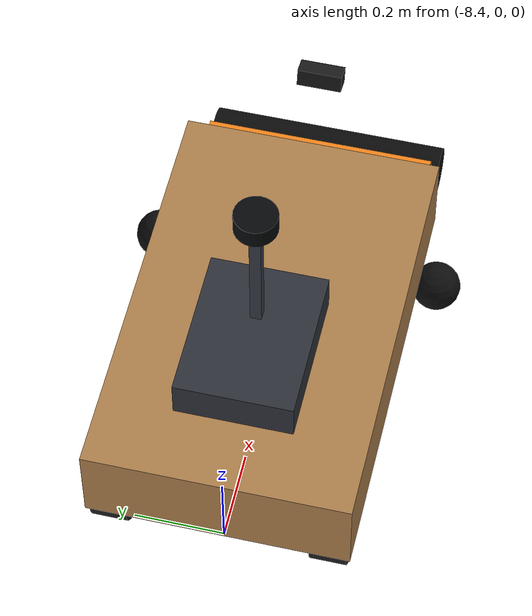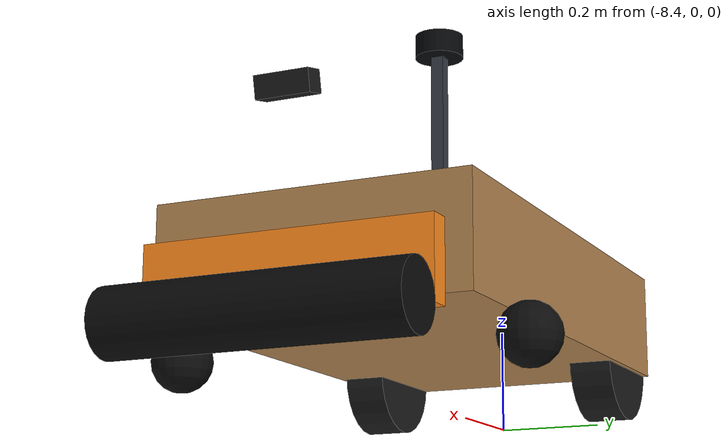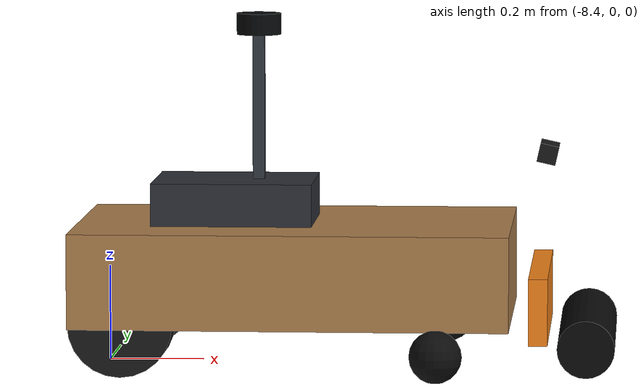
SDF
<?xml version="1.0"?>
<sdf version="1.9">
<model name="tennis_robot">
  <pose>-8 0 0 0 0 0</pose>
  <self_collide>false</self_collide>

  <!-- ═══════════════════════════════════════════════════════ BASE LINK -->
  <link name="base_link">
    <pose>0 0 0.20 0 0 0</pose>
    <inertial>
      <mass>7.2</mass>
      <inertia>
        <ixx>0.22</ixx><ixy>0</ixy><ixz>0</ixz>
        <iyy>0.38</iyy><iyz>0</iyz>
        <izz>0.42</izz>
      </inertia>
    </inertial>
    <collision name="chassis_col">
      <geometry><box><size>0.92 0.58 0.20</size></box></geometry>
    </collision>
    <!-- Plywood chassis — warm birch tone -->
    <visual name="chassis_vis">
      <geometry><box><size>0.92 0.58 0.20</size></box></geometry>
      <material>
        <ambient>0.62 0.44 0.26 1</ambient>
        <diffuse>0.68 0.50 0.30 1</diffuse>
        <specular>0.08 0.06 0.04 1</specular>
      </material>
    </visual>
    <!-- Electronics box — matte anthracite -->
    <visual name="elec_vis">
      <pose>-0.13 0 0.13 0 0 0</pose>
      <geometry><box><size>0.34 0.26 0.12</size></box></geometry>
      <material>
        <ambient>0.14 0.15 0.18 1</ambient>
        <diffuse>0.18 0.19 0.22 1</diffuse>
        <specular>0.15 0.15 0.16 1</specular>
      </material>
    </visual>
    <!-- Orange intake funnel -->
    <visual name="funnel_vis">
      <pose>0.52 0 -0.06 0 0 0</pose>
      <geometry><box><size>0.04 0.52 0.14</size></box></geometry>
      <material>
        <ambient>0.92 0.46 0.08 1</ambient>
        <diffuse>0.96 0.52 0.10 1</diffuse>
        <specular>0.10 0.06 0.02 1</specular>
      </material>
    </visual>
  </link>

  <!-- ═══════════════════════════════════════════════════════ LEFT WHEEL (y = +0.24) -->
  <!-- Cylinder r=0.11m h=0.08m mass=0.25kg, link rotated 90° around X so local Z = spin axis.
       Izz (spin) = 0.5*m*r² = 0.001513; Ixx=Iyy (transverse) = (1/12)*m*(3r²+h²) = 0.000889 -->
  <link name="left_wheel_link">
    <pose>-0.35 0.24 0.11 1.5708 0 0</pose>
    <inertial>
      <mass>0.25</mass>
      <inertia>
        <ixx>0.000889</ixx><ixy>0</ixy><ixz>0</ixz>
        <iyy>0.000889</iyy><iyz>0</iyz>
        <izz>0.001513</izz>
      </inertia>
    </inertial>
    <collision name="col">
      <geometry><cylinder><radius>0.11</radius><length>0.08</length></cylinder></geometry>
      <surface><friction><ode><mu>1.0</mu><mu2>0.5</mu2><fdir1>1 0 0</fdir1></ode></friction></surface>
    </collision>
    <visual name="vis">
      <geometry><cylinder><radius>0.11</radius><length>0.08</length></cylinder></geometry>
      <material>
        <ambient>0.08 0.08 0.08 1</ambient>
        <diffuse>0.10 0.10 0.10 1</diffuse>
        <specular>0.20 0.20 0.20 1</specular>
      </material>
    </visual>
  </link>

  <joint name="left_wheel_joint" type="revolute">
    <parent>base_link</parent>
    <child>left_wheel_link</child>
    <axis>
      <xyz expressed_in="__model__">0 1 0</xyz>
      <limit><lower>-1e16</lower><upper>1e16</upper></limit>
      <dynamics><damping>0.001</damping></dynamics>
    </axis>
  </joint>

  <!-- ═══════════════════════════════════════════════════════ RIGHT WHEEL (y = −0.24) -->
  <link name="right_wheel_link">
    <pose>-0.35 -0.24 0.11 1.5708 0 0</pose>
    <inertial>
      <mass>0.25</mass>
      <inertia>
        <ixx>0.000889</ixx><ixy>0</ixy><ixz>0</ixz>
        <iyy>0.000889</iyy><iyz>0</iyz>
        <izz>0.001513</izz>
      </inertia>
    </inertial>
    <collision name="col">
      <geometry><cylinder><radius>0.11</radius><length>0.08</length></cylinder></geometry>
      <surface><friction><ode><mu>1.0</mu><mu2>0.5</mu2><fdir1>1 0 0</fdir1></ode></friction></surface>
    </collision>
    <visual name="vis">
      <geometry><cylinder><radius>0.11</radius><length>0.08</length></cylinder></geometry>
      <material>
        <ambient>0.08 0.08 0.08 1</ambient>
        <diffuse>0.10 0.10 0.10 1</diffuse>
        <specular>0.20 0.20 0.20 1</specular>
      </material>
    </visual>
  </link>

  <joint name="right_wheel_joint" type="revolute">
    <parent>base_link</parent>
    <child>right_wheel_link</child>
    <axis>
      <xyz expressed_in="__model__">0 1 0</xyz>
      <limit><lower>-1e16</lower><upper>1e16</upper></limit>
      <dynamics><damping>0.001</damping></dynamics>
    </axis>
  </joint>

  <!-- ═══════════════════════════════════════════════════════ INTAKE ROLLER -->
  <link name="lift_wheel_link">
    <pose>0.62 0 0.065 1.5708 0 0</pose>
    <inertial>
      <mass>0.20</mass>
      <inertia>
        <ixx>0.001</ixx><ixy>0</ixy><ixz>0</ixz>
        <iyy>0.001</iyy><iyz>0</iyz>
        <izz>0.001</izz>
      </inertia>
    </inertial>
    <collision name="col">
      <geometry><cylinder><radius>0.06</radius><length>0.54</length></cylinder></geometry>
      <surface><friction><ode><mu>1.5</mu><mu2>1.5</mu2></ode></friction></surface>
    </collision>
    <visual name="vis">
      <geometry><cylinder><radius>0.06</radius><length>0.54</length></cylinder></geometry>
      <material><ambient>0.04 0.04 0.04 1</ambient><diffuse>0.04 0.04 0.04 1</diffuse></material>
    </visual>
  </link>

  <joint name="lift_wheel_joint" type="revolute">
    <parent>base_link</parent>
    <child>lift_wheel_link</child>
    <axis>
      <xyz expressed_in="__model__">0 1 0</xyz>
      <limit><lower>-1e16</lower><upper>1e16</upper></limit>
    </axis>
  </joint>

  <!-- ═══════════════════════════════════════════════════════ FRONT CASTERS (passive) -->
  <link name="front_left_caster_link">
    <pose>0.31 -0.325 0.055 0 0 0</pose>
    <inertial><mass>0.08</mass><inertia><ixx>1e-4</ixx><iyy>1e-4</iyy><izz>1e-4</izz></inertia></inertial>
    <collision name="col">
      <geometry><sphere><radius>0.055</radius></sphere></geometry>
      <surface><friction><ode><mu>0.01</mu><mu2>0.01</mu2></ode></friction></surface>
    </collision>
    <visual name="vis">
      <geometry><sphere><radius>0.055</radius></sphere></geometry>
      <material><ambient>0.05 0.05 0.05 1</ambient></material>
    </visual>
  </link>
  <joint name="front_left_caster_joint" type="ball">
    <parent>base_link</parent><child>front_left_caster_link</child>
  </joint>

  <link name="front_right_caster_link">
    <pose>0.31 0.325 0.055 0 0 0</pose>
    <inertial><mass>0.08</mass><inertia><ixx>1e-4</ixx><iyy>1e-4</iyy><izz>1e-4</izz></inertia></inertial>
    <collision name="col">
      <geometry><sphere><radius>0.055</radius></sphere></geometry>
      <surface><friction><ode><mu>0.01</mu><mu2>0.01</mu2></ode></friction></surface>
    </collision>
    <visual name="vis">
      <geometry><sphere><radius>0.055</radius></sphere></geometry>
      <material><ambient>0.05 0.05 0.05 1</ambient></material>
    </visual>
  </link>
  <joint name="front_right_caster_joint" type="ball">
    <parent>base_link</parent><child>front_right_caster_link</child>
  </joint>

  <!-- ═══════════════════════════════════════════════════════ LIDAR MAST -->
  <link name="lidar_link">
    <pose>-0.08 0 0.72 0 0 0</pose>
    <inertial><mass>0.05</mass><inertia><ixx>1e-4</ixx><iyy>1e-4</iyy><izz>1e-4</izz></inertia></inertial>
    <visual name="mast_vis">
      <pose>0 0 -0.26 0 0 0</pose>
      <geometry><box><size>0.025 0.025 0.49</size></box></geometry>
      <material><ambient>0.20 0.22 0.26 1</ambient></material>
    </visual>
    <visual name="head_vis">
      <geometry><cylinder><radius>0.047</radius><length>0.045</length></cylinder></geometry>
      <material><ambient>0.025 0.03 0.035 1</ambient></material>
    </visual>

    <sensor name="front_lidar" type="gpu_lidar">
      <pose>0 0 0 0 0 0</pose>
      <update_rate>31.25</update_rate>
      <always_on>true</always_on>
      <visualize>false</visualize>
      <topic>/gz/lidar</topic>
      <lidar>
        <scan>
          <horizontal>
            <samples>500</samples>
            <resolution>1</resolution>
            <min_angle>-3.14159265358979</min_angle>
            <max_angle>3.14159265358979</max_angle>
          </horizontal>
        </scan>
        <range>
          <min>0.05</min>
          <max>12.0</max>
          <resolution>0.01</resolution>
        </range>
        <noise><type>gaussian</type><mean>0</mean><stddev>0.005</stddev></noise>
      </lidar>
    </sensor>
  </link>
  <joint name="lidar_joint" type="fixed">
    <parent>base_link</parent><child>lidar_link</child>
  </joint>

  <!-- ═══════════════════════════════════════════════════════ CAMERA -->
  <link name="camera_link">
    <!-- x=0.535, z=0.45 from ground (0.20+0.25), pitch 0.22 rad down -->
    <pose>0.535 0 0.45 0 0.22 0</pose>
    <inertial><mass>0.03</mass><inertia><ixx>1e-5</ixx><iyy>1e-5</iyy><izz>1e-5</izz></inertia></inertial>
    <visual name="cam_vis">
      <geometry><box><size>0.04 0.10 0.04</size></box></geometry>
      <material><ambient>0.1 0.1 0.1 1</ambient></material>
    </visual>

    <sensor name="front_camera" type="camera">
      <pose>0 0 0 0 0 0</pose>
      <update_rate>31.25</update_rate>
      <always_on>true</always_on>
      <visualize>false</visualize>
      <topic>/gz/camera</topic>
      <camera>
        <horizontal_fov>1.204</horizontal_fov>
        <image><width>1920</width><height>1080</height><format>R8G8B8</format></image>
        <clip><near>0.08</near><far>18</far></clip>
        <noise><type>gaussian</type><mean>0</mean><stddev>0.007</stddev></noise>
      </camera>
    </sensor>

    <sensor name="front_depth" type="depth_camera">
      <pose>0 0 0 0 0 0</pose>
      <update_rate>31.25</update_rate>
      <always_on>true</always_on>
      <topic>/gz/depth</topic>
      <camera>
        <horizontal_fov>1.274</horizontal_fov>
        <image><width>640</width><height>480</height><format>R_FLOAT32</format></image>
        <clip><near>0.20</near><far>12</far></clip>
      </camera>
    </sensor>
  </link>
  <joint name="camera_joint" type="fixed">
    <parent>base_link</parent><child>camera_link</child>
  </joint>

  <!-- ═══════════════════════════════════════════════════════ IR SENSORS (beam-break pair) -->
  <!-- IR left points in +Y direction (toward robot center from y=−0.105) -->
  <link name="ir_left_link">
    <pose>0.54 -0.105 0.06 0 0 -1.5708</pose>
    <inertial><mass>0.005</mass><inertia><ixx>1e-6</ixx><iyy>1e-6</iyy><izz>1e-6</izz></inertia></inertial>
    <sensor name="ir_left" type="gpu_lidar">
      <update_rate>31.25</update_rate>
      <always_on>true</always_on>
      <topic>/gz/ir_left</topic>
      <lidar>
        <scan>
          <horizontal><samples>1</samples><resolution>1</resolution>
            <min_angle>0</min_angle><max_angle>0</max_angle>
          </horizontal>
        </scan>
        <range><min>0.01</min><max>0.25</max><resolution>0.001</resolution></range>
      </lidar>
    </sensor>
  </link>
  <joint name="ir_left_joint" type="fixed">
    <parent>base_link</parent><child>ir_left_link</child>
  </joint>

  <!-- IR right points in −Y direction (toward robot center from y=+0.105) -->
  <link name="ir_right_link">
    <pose>0.54 0.105 0.06 0 0 1.5708</pose>
    <inertial><mass>0.005</mass><inertia><ixx>1e-6</ixx><iyy>1e-6</iyy><izz>1e-6</izz></inertia></inertial>
    <sensor name="ir_right" type="gpu_lidar">
      <update_rate>31.25</update_rate>
      <always_on>true</always_on>
      <topic>/gz/ir_right</topic>
      <lidar>
        <scan>
          <horizontal><samples>1</samples><resolution>1</resolution>
            <min_angle>0</min_angle><max_angle>0</max_angle>
          </horizontal>
        </scan>
        <range><min>0.01</min><max>0.25</max><resolution>0.001</resolution></range>
      </lidar>
    </sensor>
  </link>
  <joint name="ir_right_joint" type="fixed">
    <parent>base_link</parent><child>ir_right_link</child>
  </joint>

  <!-- ═══════════════════════════════════════════════════════ DIFF DRIVE -->
  <plugin filename="gz-sim-diff-drive-system"
          name="gz::sim::systems::DiffDrive">
    <left_joint>left_wheel_joint</left_joint>
    <right_joint>right_wheel_joint</right_joint>
    <wheel_separation>0.48</wheel_separation>
    <wheel_radius>0.11</wheel_radius>
    <odom_publish_frequency>31.25</odom_publish_frequency>
    <topic>/cmd_vel</topic>
    <odom_topic>/odom</odom_topic>
    <tf_topic>/tf</tf_topic>
    <frame_id>odom</frame_id>
    <child_frame_id>base_link</child_frame_id>
    <max_linear_acceleration>2.0</max_linear_acceleration>
    <min_linear_acceleration>-2.0</min_linear_acceleration>
    <max_angular_acceleration>4.0</max_angular_acceleration>
  </plugin>

  <!-- Intake roller velocity controller — topic /lift_wheel/cmd -->
  <plugin filename="gz-sim-joint-controller-system"
          name="gz::sim::systems::JointController">
    <joint_name>lift_wheel_joint</joint_name>
    <use_force_commands>false</use_force_commands>
    <topic>/lift_wheel/cmd</topic>
  </plugin>

</model>
</sdf>
